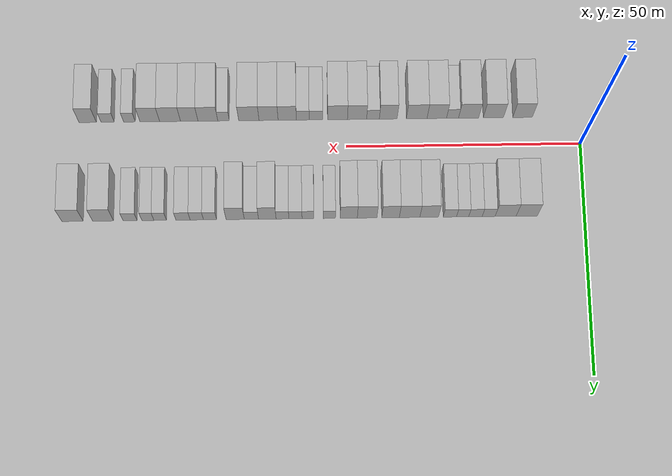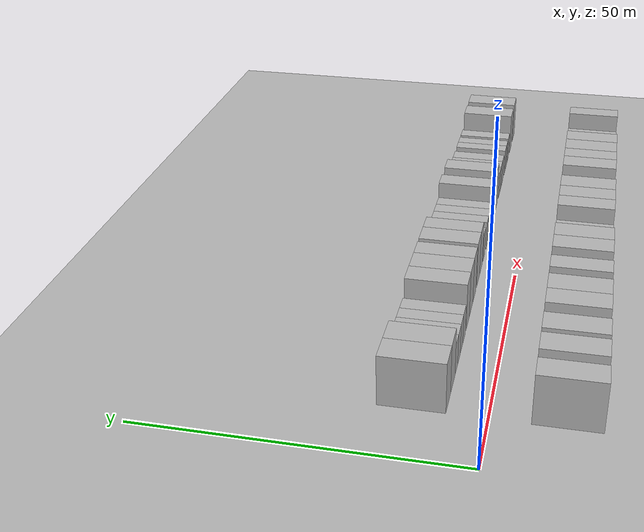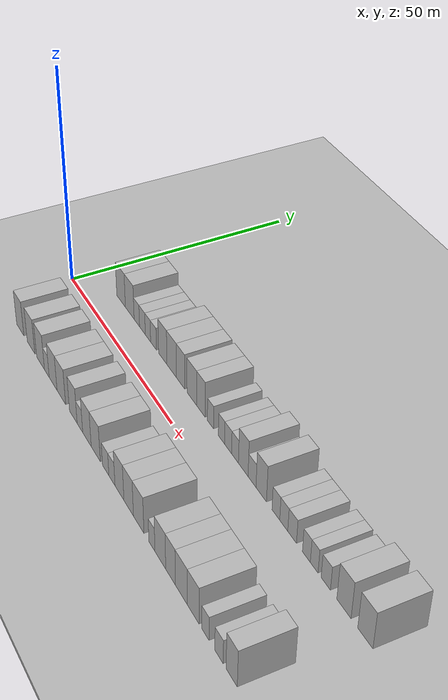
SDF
<sdf version="1.6">
 <world name="default">
  <include><name>ground_plane_1</name><uri>model://HANNAS_ground_plane</uri></include>
  <include>
   <name>ground_plane_2</name>
   <uri>model://HANNAS_ground_plane</uri>
   <pose>100 0 0  0 0 0</pose>
  </include>
  <model name="building_1">
   <static>1</static>
   <pose>12.2414 11.0000 0 0.000000 0.000000 1.570796</pose>
   <link name="link">
    <pose>0 0 4.50 0 0 0</pose>
    <collision name="collision"><geometry><box><size>10.0000 4.4828 9.0000</size></box></geometry></collision>
    <visual name="visual">
     <cast_shadows>0</cast_shadows>
     <geometry><box><size>10.0000 4.4828 9.0000</size></box></geometry>
     <material>
      <script>
       <uri>model://HANNAS_wall/materials/scripts</uri>
       <uri>model://HANNAS_wall/materials/textures</uri>
       <name>vrc/HANNAS_wall</name>
      </script>
     </material>
    </visual>
   </link>
  </model>
  <model name="building_2">
   <static>1</static>
   <pose>16.7032 11.0000 0 0.000000 0.000000 1.570796</pose>
   <link name="link">
    <pose>0 0 4.50 0 0 0</pose>
    <collision name="collision"><geometry><box><size>10.0000 4.4408 9.0000</size></box></geometry></collision>
    <visual name="visual">
     <cast_shadows>0</cast_shadows>
     <geometry><box><size>10.0000 4.4408 9.0000</size></box></geometry>
     <material>
      <script>
       <uri>model://HANNAS_wall/materials/scripts</uri>
       <uri>model://HANNAS_wall/materials/textures</uri>
       <name>vrc/HANNAS_wall</name>
      </script>
     </material>
    </visual>
   </link>
  </model>
  <model name="building_3">
   <static>1</static>
   <pose>20.2841 11.0000 0 0.000000 0.000000 1.570796</pose>
   <link name="link">
    <pose>0 0 3.00 0 0 0</pose>
    <collision name="collision"><geometry><box><size>10.0000 2.7210 6.0000</size></box></geometry></collision>
    <visual name="visual">
     <cast_shadows>0</cast_shadows>
     <geometry><box><size>10.0000 2.7210 6.0000</size></box></geometry>
     <material>
      <script>
       <uri>model://HANNAS_wall/materials/scripts</uri>
       <uri>model://HANNAS_wall/materials/textures</uri>
       <name>vrc/HANNAS_wall</name>
      </script>
     </material>
    </visual>
   </link>
  </model>
  <model name="building_4">
   <static>1</static>
   <pose>23.0607 11.0000 0 0.000000 0.000000 1.570796</pose>
   <link name="link">
    <pose>0 0 3.00 0 0 0</pose>
    <collision name="collision"><geometry><box><size>10.0000 2.8322 6.0000</size></box></geometry></collision>
    <visual name="visual">
     <cast_shadows>0</cast_shadows>
     <geometry><box><size>10.0000 2.8322 6.0000</size></box></geometry>
     <material>
      <script>
       <uri>model://HANNAS_wall/materials/scripts</uri>
       <uri>model://HANNAS_wall/materials/textures</uri>
       <name>vrc/HANNAS_wall</name>
      </script>
     </material>
    </visual>
   </link>
  </model>
  <model name="building_5">
   <static>1</static>
   <pose>25.7686 11.0000 0 0.000000 0.000000 1.570796</pose>
   <link name="link">
    <pose>0 0 3.00 0 0 0</pose>
    <collision name="collision"><geometry><box><size>10.0000 2.5836 6.0000</size></box></geometry></collision>
    <visual name="visual">
     <cast_shadows>0</cast_shadows>
     <geometry><box><size>10.0000 2.5836 6.0000</size></box></geometry>
     <material>
      <script>
       <uri>model://HANNAS_wall/materials/scripts</uri>
       <uri>model://HANNAS_wall/materials/textures</uri>
       <name>vrc/HANNAS_wall</name>
      </script>
     </material>
    </visual>
   </link>
  </model>
  <model name="building_6">
   <static>1</static>
   <pose>28.4573 11.0000 0 0.000000 0.000000 1.570796</pose>
   <link name="link">
    <pose>0 0 3.00 0 0 0</pose>
    <collision name="collision"><geometry><box><size>10.0000 2.7939 6.0000</size></box></geometry></collision>
    <visual name="visual">
     <cast_shadows>0</cast_shadows>
     <geometry><box><size>10.0000 2.7939 6.0000</size></box></geometry>
     <material>
      <script>
       <uri>model://HANNAS_wall/materials/scripts</uri>
       <uri>model://HANNAS_wall/materials/textures</uri>
       <name>vrc/HANNAS_wall</name>
      </script>
     </material>
    </visual>
   </link>
  </model>
  <model name="building_7">
   <static>1</static>
   <pose>32.8185 11.0000 0 0.000000 0.000000 1.570796</pose>
   <link name="link">
    <pose>0 0 4.50 0 0 0</pose>
    <collision name="collision"><geometry><box><size>10.0000 3.9286 9.0000</size></box></geometry></collision>
    <visual name="visual">
     <cast_shadows>0</cast_shadows>
     <geometry><box><size>10.0000 3.9286 9.0000</size></box></geometry>
     <material>
      <script>
       <uri>model://HANNAS_wall/materials/scripts</uri>
       <uri>model://HANNAS_wall/materials/textures</uri>
       <name>vrc/HANNAS_wall</name>
      </script>
     </material>
    </visual>
   </link>
  </model>
  <model name="building_8">
   <static>1</static>
   <pose>36.9429 11.0000 0 0.000000 0.000000 1.570796</pose>
   <link name="link">
    <pose>0 0 4.50 0 0 0</pose>
    <collision name="collision"><geometry><box><size>10.0000 4.3202 9.0000</size></box></geometry></collision>
    <visual name="visual">
     <cast_shadows>0</cast_shadows>
     <geometry><box><size>10.0000 4.3202 9.0000</size></box></geometry>
     <material>
      <script>
       <uri>model://HANNAS_wall/materials/scripts</uri>
       <uri>model://HANNAS_wall/materials/textures</uri>
       <name>vrc/HANNAS_wall</name>
      </script>
     </material>
    </visual>
   </link>
  </model>
  <model name="building_9">
   <static>1</static>
   <pose>40.9576 11.0000 0 0.000000 0.000000 1.570796</pose>
   <link name="link">
    <pose>0 0 4.50 0 0 0</pose>
    <collision name="collision"><geometry><box><size>10.0000 3.7091 9.0000</size></box></geometry></collision>
    <visual name="visual">
     <cast_shadows>0</cast_shadows>
     <geometry><box><size>10.0000 3.7091 9.0000</size></box></geometry>
     <material>
      <script>
       <uri>model://HANNAS_wall/materials/scripts</uri>
       <uri>model://HANNAS_wall/materials/textures</uri>
       <name>vrc/HANNAS_wall</name>
      </script>
     </material>
    </visual>
   </link>
  </model>
  <model name="building_10">
   <static>1</static>
   <pose>45.8803 11.0000 0 0.000000 0.000000 1.570796</pose>
   <link name="link">
    <pose>0 0 4.50 0 0 0</pose>
    <collision name="collision"><geometry><box><size>10.0000 4.1362 9.0000</size></box></geometry></collision>
    <visual name="visual">
     <cast_shadows>0</cast_shadows>
     <geometry><box><size>10.0000 4.1362 9.0000</size></box></geometry>
     <material>
      <script>
       <uri>model://HANNAS_wall/materials/scripts</uri>
       <uri>model://HANNAS_wall/materials/textures</uri>
       <name>vrc/HANNAS_wall</name>
      </script>
     </material>
    </visual>
   </link>
  </model>
  <model name="building_11">
   <static>1</static>
   <pose>49.7523 11.0000 0 0.000000 0.000000 1.570796</pose>
   <link name="link">
    <pose>0 0 4.50 0 0 0</pose>
    <collision name="collision"><geometry><box><size>10.0000 3.6078 9.0000</size></box></geometry></collision>
    <visual name="visual">
     <cast_shadows>0</cast_shadows>
     <geometry><box><size>10.0000 3.6078 9.0000</size></box></geometry>
     <material>
      <script>
       <uri>model://HANNAS_wall/materials/scripts</uri>
       <uri>model://HANNAS_wall/materials/textures</uri>
       <name>vrc/HANNAS_wall</name>
      </script>
     </material>
    </visual>
   </link>
  </model>
  <model name="building_12">
   <static>1</static>
   <pose>53.8203 11.0000 0 0.000000 0.000000 1.570796</pose>
   <link name="link">
    <pose>0 0 3.00 0 0 0</pose>
    <collision name="collision"><geometry><box><size>10.0000 2.5282 6.0000</size></box></geometry></collision>
    <visual name="visual">
     <cast_shadows>0</cast_shadows>
     <geometry><box><size>10.0000 2.5282 6.0000</size></box></geometry>
     <material>
      <script>
       <uri>model://HANNAS_wall/materials/scripts</uri>
       <uri>model://HANNAS_wall/materials/textures</uri>
       <name>vrc/HANNAS_wall</name>
      </script>
     </material>
    </visual>
   </link>
  </model>
  <model name="building_13">
   <static>1</static>
   <pose>58.3313 11.0000 0 0.000000 0.000000 1.570796</pose>
   <link name="link">
    <pose>0 0 3.00 0 0 0</pose>
    <collision name="collision"><geometry><box><size>10.0000 2.4938 6.0000</size></box></geometry></collision>
    <visual name="visual">
     <cast_shadows>0</cast_shadows>
     <geometry><box><size>10.0000 2.4938 6.0000</size></box></geometry>
     <material>
      <script>
       <uri>model://HANNAS_wall/materials/scripts</uri>
       <uri>model://HANNAS_wall/materials/textures</uri>
       <name>vrc/HANNAS_wall</name>
      </script>
     </material>
    </visual>
   </link>
  </model>
  <model name="building_14">
   <static>1</static>
   <pose>60.9623 11.0000 0 0.000000 0.000000 1.570796</pose>
   <link name="link">
    <pose>0 0 3.00 0 0 0</pose>
    <collision name="collision"><geometry><box><size>10.0000 2.7682 6.0000</size></box></geometry></collision>
    <visual name="visual">
     <cast_shadows>0</cast_shadows>
     <geometry><box><size>10.0000 2.7682 6.0000</size></box></geometry>
     <material>
      <script>
       <uri>model://HANNAS_wall/materials/scripts</uri>
       <uri>model://HANNAS_wall/materials/textures</uri>
       <name>vrc/HANNAS_wall</name>
      </script>
     </material>
    </visual>
   </link>
  </model>
  <model name="building_15">
   <static>1</static>
   <pose>63.6974 11.0000 0 0.000000 0.000000 1.570796</pose>
   <link name="link">
    <pose>0 0 3.00 0 0 0</pose>
    <collision name="collision"><geometry><box><size>10.0000 2.7020 6.0000</size></box></geometry></collision>
    <visual name="visual">
     <cast_shadows>0</cast_shadows>
     <geometry><box><size>10.0000 2.7020 6.0000</size></box></geometry>
     <material>
      <script>
       <uri>model://HANNAS_wall/materials/scripts</uri>
       <uri>model://HANNAS_wall/materials/textures</uri>
       <name>vrc/HANNAS_wall</name>
      </script>
     </material>
    </visual>
   </link>
  </model>
  <model name="building_16">
   <static>1</static>
   <pose>66.8935 11.0000 0 0.000000 0.000000 1.570796</pose>
   <link name="link">
    <pose>0 0 4.50 0 0 0</pose>
    <collision name="collision"><geometry><box><size>10.0000 3.6904 9.0000</size></box></geometry></collision>
    <visual name="visual">
     <cast_shadows>0</cast_shadows>
     <geometry><box><size>10.0000 3.6904 9.0000</size></box></geometry>
     <material>
      <script>
       <uri>model://HANNAS_wall/materials/scripts</uri>
       <uri>model://HANNAS_wall/materials/textures</uri>
       <name>vrc/HANNAS_wall</name>
      </script>
     </material>
    </visual>
   </link>
  </model>
  <model name="building_17">
   <static>1</static>
   <pose>70.2351 11.0000 0 0.000000 0.000000 1.570796</pose>
   <link name="link">
    <pose>0 0 3.00 0 0 0</pose>
    <collision name="collision"><geometry><box><size>10.0000 2.9928 6.0000</size></box></geometry></collision>
    <visual name="visual">
     <cast_shadows>0</cast_shadows>
     <geometry><box><size>10.0000 2.9928 6.0000</size></box></geometry>
     <material>
      <script>
       <uri>model://HANNAS_wall/materials/scripts</uri>
       <uri>model://HANNAS_wall/materials/textures</uri>
       <name>vrc/HANNAS_wall</name>
      </script>
     </material>
    </visual>
   </link>
  </model>
  <model name="building_18">
   <static>1</static>
   <pose>73.6525 11.0000 0 0.000000 0.000000 1.570796</pose>
   <link name="link">
    <pose>0 0 4.50 0 0 0</pose>
    <collision name="collision"><geometry><box><size>10.0000 3.8420 9.0000</size></box></geometry></collision>
    <visual name="visual">
     <cast_shadows>0</cast_shadows>
     <geometry><box><size>10.0000 3.8420 9.0000</size></box></geometry>
     <material>
      <script>
       <uri>model://HANNAS_wall/materials/scripts</uri>
       <uri>model://HANNAS_wall/materials/textures</uri>
       <name>vrc/HANNAS_wall</name>
      </script>
     </material>
    </visual>
   </link>
  </model>
  <model name="building_19">
   <static>1</static>
   <pose>78.9546 11.0000 0 0.000000 0.000000 1.570796</pose>
   <link name="link">
    <pose>0 0 3.00 0 0 0</pose>
    <collision name="collision"><geometry><box><size>10.0000 2.7621 6.0000</size></box></geometry></collision>
    <visual name="visual">
     <cast_shadows>0</cast_shadows>
     <geometry><box><size>10.0000 2.7621 6.0000</size></box></geometry>
     <material>
      <script>
       <uri>model://HANNAS_wall/materials/scripts</uri>
       <uri>model://HANNAS_wall/materials/textures</uri>
       <name>vrc/HANNAS_wall</name>
      </script>
     </material>
    </visual>
   </link>
  </model>
  <model name="building_20">
   <static>1</static>
   <pose>81.7388 11.0000 0 0.000000 0.000000 1.570796</pose>
   <link name="link">
    <pose>0 0 3.00 0 0 0</pose>
    <collision name="collision"><geometry><box><size>10.0000 2.8063 6.0000</size></box></geometry></collision>
    <visual name="visual">
     <cast_shadows>0</cast_shadows>
     <geometry><box><size>10.0000 2.8063 6.0000</size></box></geometry>
     <material>
      <script>
       <uri>model://HANNAS_wall/materials/scripts</uri>
       <uri>model://HANNAS_wall/materials/textures</uri>
       <name>vrc/HANNAS_wall</name>
      </script>
     </material>
    </visual>
   </link>
  </model>
  <model name="building_21">
   <static>1</static>
   <pose>84.6400 11.0000 0 0.000000 0.000000 1.570796</pose>
   <link name="link">
    <pose>0 0 3.00 0 0 0</pose>
    <collision name="collision"><geometry><box><size>10.0000 2.9960 6.0000</size></box></geometry></collision>
    <visual name="visual">
     <cast_shadows>0</cast_shadows>
     <geometry><box><size>10.0000 2.9960 6.0000</size></box></geometry>
     <material>
      <script>
       <uri>model://HANNAS_wall/materials/scripts</uri>
       <uri>model://HANNAS_wall/materials/textures</uri>
       <name>vrc/HANNAS_wall</name>
      </script>
     </material>
    </visual>
   </link>
  </model>
  <model name="building_22">
   <static>1</static>
   <pose>89.4517 11.0000 0 0.000000 0.000000 1.570796</pose>
   <link name="link">
    <pose>0 0 3.00 0 0 0</pose>
    <collision name="collision"><geometry><box><size>10.0000 2.6273 6.0000</size></box></geometry></collision>
    <visual name="visual">
     <cast_shadows>0</cast_shadows>
     <geometry><box><size>10.0000 2.6273 6.0000</size></box></geometry>
     <material>
      <script>
       <uri>model://HANNAS_wall/materials/scripts</uri>
       <uri>model://HANNAS_wall/materials/textures</uri>
       <name>vrc/HANNAS_wall</name>
      </script>
     </material>
    </visual>
   </link>
  </model>
  <model name="building_23">
   <static>1</static>
   <pose>92.0279 11.0000 0 0.000000 0.000000 1.570796</pose>
   <link name="link">
    <pose>0 0 3.00 0 0 0</pose>
    <collision name="collision"><geometry><box><size>10.0000 2.5250 6.0000</size></box></geometry></collision>
    <visual name="visual">
     <cast_shadows>0</cast_shadows>
     <geometry><box><size>10.0000 2.5250 6.0000</size></box></geometry>
     <material>
      <script>
       <uri>model://HANNAS_wall/materials/scripts</uri>
       <uri>model://HANNAS_wall/materials/textures</uri>
       <name>vrc/HANNAS_wall</name>
      </script>
     </material>
    </visual>
   </link>
  </model>
  <model name="building_24">
   <static>1</static>
   <pose>95.7770 11.0000 0 0.000000 0.000000 1.570796</pose>
   <link name="link">
    <pose>0 0 3.00 0 0 0</pose>
    <collision name="collision"><geometry><box><size>10.0000 2.9732 6.0000</size></box></geometry></collision>
    <visual name="visual">
     <cast_shadows>0</cast_shadows>
     <geometry><box><size>10.0000 2.9732 6.0000</size></box></geometry>
     <material>
      <script>
       <uri>model://HANNAS_wall/materials/scripts</uri>
       <uri>model://HANNAS_wall/materials/textures</uri>
       <name>vrc/HANNAS_wall</name>
      </script>
     </material>
    </visual>
   </link>
  </model>
  <model name="building_25">
   <static>1</static>
   <pose>101.4536 11.0000 0 0.000000 0.000000 1.570796</pose>
   <link name="link">
    <pose>0 0 4.50 0 0 0</pose>
    <collision name="collision"><geometry><box><size>10.0000 4.3800 9.0000</size></box></geometry></collision>
    <visual name="visual">
     <cast_shadows>0</cast_shadows>
     <geometry><box><size>10.0000 4.3800 9.0000</size></box></geometry>
     <material>
      <script>
       <uri>model://HANNAS_wall/materials/scripts</uri>
       <uri>model://HANNAS_wall/materials/textures</uri>
       <name>vrc/HANNAS_wall</name>
      </script>
     </material>
    </visual>
   </link>
  </model>
  <model name="building_26">
   <static>1</static>
   <pose>107.8832 11.0000 0 0.000000 0.000000 1.570796</pose>
   <link name="link">
    <pose>0 0 4.50 0 0 0</pose>
    <collision name="collision"><geometry><box><size>10.0000 4.4793 9.0000</size></box></geometry></collision>
    <visual name="visual">
     <cast_shadows>0</cast_shadows>
     <geometry><box><size>10.0000 4.4793 9.0000</size></box></geometry>
     <material>
      <script>
       <uri>model://HANNAS_wall/materials/scripts</uri>
       <uri>model://HANNAS_wall/materials/textures</uri>
       <name>vrc/HANNAS_wall</name>
      </script>
     </material>
    </visual>
   </link>
  </model>
  <model name="building_51">
   <static>1</static>
   <pose>12.0988 -11.0000 0 0.000000 0.000000 1.570796</pose>
   <link name="link">
    <pose>0 0 4.50 0 0 0</pose>
    <collision name="collision"><geometry><box><size>10.0000 4.1976 9.0000</size></box></geometry></collision>
    <visual name="visual">
     <cast_shadows>0</cast_shadows>
     <geometry><box><size>10.0000 4.1976 9.0000</size></box></geometry>
     <material>
      <script>
       <uri>model://HANNAS_wall/materials/scripts</uri>
       <uri>model://HANNAS_wall/materials/textures</uri>
       <name>vrc/HANNAS_wall</name>
      </script>
     </material>
    </visual>
   </link>
  </model>
  <model name="building_52">
   <static>1</static>
   <pose>18.3634 -11.0000 0 0.000000 0.000000 1.570796</pose>
   <link name="link">
    <pose>0 0 4.50 0 0 0</pose>
    <collision name="collision"><geometry><box><size>10.0000 4.3317 9.0000</size></box></geometry></collision>
    <visual name="visual">
     <cast_shadows>0</cast_shadows>
     <geometry><box><size>10.0000 4.3317 9.0000</size></box></geometry>
     <material>
      <script>
       <uri>model://HANNAS_wall/materials/scripts</uri>
       <uri>model://HANNAS_wall/materials/textures</uri>
       <name>vrc/HANNAS_wall</name>
      </script>
     </material>
    </visual>
   </link>
  </model>
  <model name="building_53">
   <static>1</static>
   <pose>23.6834 -11.0000 0 0.000000 0.000000 1.570796</pose>
   <link name="link">
    <pose>0 0 4.50 0 0 0</pose>
    <collision name="collision"><geometry><box><size>10.0000 4.3081 9.0000</size></box></geometry></collision>
    <visual name="visual">
     <cast_shadows>0</cast_shadows>
     <geometry><box><size>10.0000 4.3081 9.0000</size></box></geometry>
     <material>
      <script>
       <uri>model://HANNAS_wall/materials/scripts</uri>
       <uri>model://HANNAS_wall/materials/textures</uri>
       <name>vrc/HANNAS_wall</name>
      </script>
     </material>
    </visual>
   </link>
  </model>
  <model name="building_54">
   <static>1</static>
   <pose>27.1206 -11.0000 0 0.000000 0.000000 1.570796</pose>
   <link name="link">
    <pose>0 0 3.00 0 0 0</pose>
    <collision name="collision"><geometry><box><size>10.0000 2.5663 6.0000</size></box></geometry></collision>
    <visual name="visual">
     <cast_shadows>0</cast_shadows>
     <geometry><box><size>10.0000 2.5663 6.0000</size></box></geometry>
     <material>
      <script>
       <uri>model://HANNAS_wall/materials/scripts</uri>
       <uri>model://HANNAS_wall/materials/textures</uri>
       <name>vrc/HANNAS_wall</name>
      </script>
     </material>
    </visual>
   </link>
  </model>
  <model name="building_55">
   <static>1</static>
   <pose>30.4940 -11.0000 0 0.000000 0.000000 1.570796</pose>
   <link name="link">
    <pose>0 0 4.50 0 0 0</pose>
    <collision name="collision"><geometry><box><size>10.0000 4.1804 9.0000</size></box></geometry></collision>
    <visual name="visual">
     <cast_shadows>0</cast_shadows>
     <geometry><box><size>10.0000 4.1804 9.0000</size></box></geometry>
     <material>
      <script>
       <uri>model://HANNAS_wall/materials/scripts</uri>
       <uri>model://HANNAS_wall/materials/textures</uri>
       <name>vrc/HANNAS_wall</name>
      </script>
     </material>
    </visual>
   </link>
  </model>
  <model name="building_56">
   <static>1</static>
   <pose>34.8016 -11.0000 0 0.000000 0.000000 1.570796</pose>
   <link name="link">
    <pose>0 0 4.50 0 0 0</pose>
    <collision name="collision"><geometry><box><size>10.0000 4.4348 9.0000</size></box></geometry></collision>
    <visual name="visual">
     <cast_shadows>0</cast_shadows>
     <geometry><box><size>10.0000 4.4348 9.0000</size></box></geometry>
     <material>
      <script>
       <uri>model://HANNAS_wall/materials/scripts</uri>
       <uri>model://HANNAS_wall/materials/textures</uri>
       <name>vrc/HANNAS_wall</name>
      </script>
     </material>
    </visual>
   </link>
  </model>
  <model name="building_57">
   <static>1</static>
   <pose>40.9238 -11.0000 0 0.000000 0.000000 1.570796</pose>
   <link name="link">
    <pose>0 0 4.50 0 0 0</pose>
    <collision name="collision"><geometry><box><size>10.0000 3.8095 9.0000</size></box></geometry></collision>
    <visual name="visual">
     <cast_shadows>0</cast_shadows>
     <geometry><box><size>10.0000 3.8095 9.0000</size></box></geometry>
     <material>
      <script>
       <uri>model://HANNAS_wall/materials/scripts</uri>
       <uri>model://HANNAS_wall/materials/textures</uri>
       <name>vrc/HANNAS_wall</name>
      </script>
     </material>
    </visual>
   </link>
  </model>
  <model name="building_58">
   <static>1</static>
   <pose>44.1946 -11.0000 0 0.000000 0.000000 1.570796</pose>
   <link name="link">
    <pose>0 0 3.00 0 0 0</pose>
    <collision name="collision"><geometry><box><size>10.0000 2.7320 6.0000</size></box></geometry></collision>
    <visual name="visual">
     <cast_shadows>0</cast_shadows>
     <geometry><box><size>10.0000 2.7320 6.0000</size></box></geometry>
     <material>
      <script>
       <uri>model://HANNAS_wall/materials/scripts</uri>
       <uri>model://HANNAS_wall/materials/textures</uri>
       <name>vrc/HANNAS_wall</name>
      </script>
     </material>
    </visual>
   </link>
  </model>
  <model name="building_59">
   <static>1</static>
   <pose>47.6147 -11.0000 0 0.000000 0.000000 1.570796</pose>
   <link name="link">
    <pose>0 0 4.50 0 0 0</pose>
    <collision name="collision"><geometry><box><size>10.0000 4.1082 9.0000</size></box></geometry></collision>
    <visual name="visual">
     <cast_shadows>0</cast_shadows>
     <geometry><box><size>10.0000 4.1082 9.0000</size></box></geometry>
     <material>
      <script>
       <uri>model://HANNAS_wall/materials/scripts</uri>
       <uri>model://HANNAS_wall/materials/textures</uri>
       <name>vrc/HANNAS_wall</name>
      </script>
     </material>
    </visual>
   </link>
  </model>
  <model name="building_60">
   <static>1</static>
   <pose>51.8039 -11.0000 0 0.000000 0.000000 1.570796</pose>
   <link name="link">
    <pose>0 0 4.50 0 0 0</pose>
    <collision name="collision"><geometry><box><size>10.0000 4.2702 9.0000</size></box></geometry></collision>
    <visual name="visual">
     <cast_shadows>0</cast_shadows>
     <geometry><box><size>10.0000 4.2702 9.0000</size></box></geometry>
     <material>
      <script>
       <uri>model://HANNAS_wall/materials/scripts</uri>
       <uri>model://HANNAS_wall/materials/textures</uri>
       <name>vrc/HANNAS_wall</name>
      </script>
     </material>
    </visual>
   </link>
  </model>
  <model name="building_61">
   <static>1</static>
   <pose>56.4022 -11.0000 0 0.000000 0.000000 1.570796</pose>
   <link name="link">
    <pose>0 0 3.00 0 0 0</pose>
    <collision name="collision"><geometry><box><size>10.0000 2.9265 6.0000</size></box></geometry></collision>
    <visual name="visual">
     <cast_shadows>0</cast_shadows>
     <geometry><box><size>10.0000 2.9265 6.0000</size></box></geometry>
     <material>
      <script>
       <uri>model://HANNAS_wall/materials/scripts</uri>
       <uri>model://HANNAS_wall/materials/textures</uri>
       <name>vrc/HANNAS_wall</name>
      </script>
     </material>
    </visual>
   </link>
  </model>
  <model name="building_62">
   <static>1</static>
   <pose>59.2356 -11.0000 0 0.000000 0.000000 1.570796</pose>
   <link name="link">
    <pose>0 0 3.00 0 0 0</pose>
    <collision name="collision"><geometry><box><size>10.0000 2.7404 6.0000</size></box></geometry></collision>
    <visual name="visual">
     <cast_shadows>0</cast_shadows>
     <geometry><box><size>10.0000 2.7404 6.0000</size></box></geometry>
     <material>
      <script>
       <uri>model://HANNAS_wall/materials/scripts</uri>
       <uri>model://HANNAS_wall/materials/textures</uri>
       <name>vrc/HANNAS_wall</name>
      </script>
     </material>
    </visual>
   </link>
  </model>
  <model name="building_63">
   <static>1</static>
   <pose>62.5726 -11.0000 0 0.000000 0.000000 1.570796</pose>
   <link name="link">
    <pose>0 0 4.50 0 0 0</pose>
    <collision name="collision"><geometry><box><size>10.0000 3.9336 9.0000</size></box></geometry></collision>
    <visual name="visual">
     <cast_shadows>0</cast_shadows>
     <geometry><box><size>10.0000 3.9336 9.0000</size></box></geometry>
     <material>
      <script>
       <uri>model://HANNAS_wall/materials/scripts</uri>
       <uri>model://HANNAS_wall/materials/textures</uri>
       <name>vrc/HANNAS_wall</name>
      </script>
     </material>
    </visual>
   </link>
  </model>
  <model name="building_64">
   <static>1</static>
   <pose>66.5847 -11.0000 0 0.000000 0.000000 1.570796</pose>
   <link name="link">
    <pose>0 0 4.50 0 0 0</pose>
    <collision name="collision"><geometry><box><size>10.0000 4.0906 9.0000</size></box></geometry></collision>
    <visual name="visual">
     <cast_shadows>0</cast_shadows>
     <geometry><box><size>10.0000 4.0906 9.0000</size></box></geometry>
     <material>
      <script>
       <uri>model://HANNAS_wall/materials/scripts</uri>
       <uri>model://HANNAS_wall/materials/textures</uri>
       <name>vrc/HANNAS_wall</name>
      </script>
     </material>
    </visual>
   </link>
  </model>
  <model name="building_65">
   <static>1</static>
   <pose>70.8140 -11.0000 0 0.000000 0.000000 1.570796</pose>
   <link name="link">
    <pose>0 0 4.50 0 0 0</pose>
    <collision name="collision"><geometry><box><size>10.0000 4.3679 9.0000</size></box></geometry></collision>
    <visual name="visual">
     <cast_shadows>0</cast_shadows>
     <geometry><box><size>10.0000 4.3679 9.0000</size></box></geometry>
     <material>
      <script>
       <uri>model://HANNAS_wall/materials/scripts</uri>
       <uri>model://HANNAS_wall/materials/textures</uri>
       <name>vrc/HANNAS_wall</name>
      </script>
     </material>
    </visual>
   </link>
  </model>
  <model name="building_66">
   <static>1</static>
   <pose>76.2325 -11.0000 0 0.000000 0.000000 1.570796</pose>
   <link name="link">
    <pose>0 0 3.00 0 0 0</pose>
    <collision name="collision"><geometry><box><size>10.0000 2.4692 6.0000</size></box></geometry></collision>
    <visual name="visual">
     <cast_shadows>0</cast_shadows>
     <geometry><box><size>10.0000 2.4692 6.0000</size></box></geometry>
     <material>
      <script>
       <uri>model://HANNAS_wall/materials/scripts</uri>
       <uri>model://HANNAS_wall/materials/textures</uri>
       <name>vrc/HANNAS_wall</name>
      </script>
     </material>
    </visual>
   </link>
  </model>
  <model name="building_67">
   <static>1</static>
   <pose>79.5894 -11.0000 0 0.000000 0.000000 1.570796</pose>
   <link name="link">
    <pose>0 0 4.50 0 0 0</pose>
    <collision name="collision"><geometry><box><size>10.0000 4.2446 9.0000</size></box></geometry></collision>
    <visual name="visual">
     <cast_shadows>0</cast_shadows>
     <geometry><box><size>10.0000 4.2446 9.0000</size></box></geometry>
     <material>
      <script>
       <uri>model://HANNAS_wall/materials/scripts</uri>
       <uri>model://HANNAS_wall/materials/textures</uri>
       <name>vrc/HANNAS_wall</name>
      </script>
     </material>
    </visual>
   </link>
  </model>
  <model name="building_68">
   <static>1</static>
   <pose>83.5843 -11.0000 0 0.000000 0.000000 1.570796</pose>
   <link name="link">
    <pose>0 0 4.50 0 0 0</pose>
    <collision name="collision"><geometry><box><size>10.0000 3.7452 9.0000</size></box></geometry></collision>
    <visual name="visual">
     <cast_shadows>0</cast_shadows>
     <geometry><box><size>10.0000 3.7452 9.0000</size></box></geometry>
     <material>
      <script>
       <uri>model://HANNAS_wall/materials/scripts</uri>
       <uri>model://HANNAS_wall/materials/textures</uri>
       <name>vrc/HANNAS_wall</name>
      </script>
     </material>
    </visual>
   </link>
  </model>
  <model name="building_69">
   <static>1</static>
   <pose>87.6979 -11.0000 0 0.000000 0.000000 1.570796</pose>
   <link name="link">
    <pose>0 0 4.50 0 0 0</pose>
    <collision name="collision"><geometry><box><size>10.0000 4.4820 9.0000</size></box></geometry></collision>
    <visual name="visual">
     <cast_shadows>0</cast_shadows>
     <geometry><box><size>10.0000 4.4820 9.0000</size></box></geometry>
     <material>
      <script>
       <uri>model://HANNAS_wall/materials/scripts</uri>
       <uri>model://HANNAS_wall/materials/textures</uri>
       <name>vrc/HANNAS_wall</name>
      </script>
     </material>
    </visual>
   </link>
  </model>
  <model name="building_70">
   <static>1</static>
   <pose>92.0435 -11.0000 0 0.000000 0.000000 1.570796</pose>
   <link name="link">
    <pose>0 0 4.50 0 0 0</pose>
    <collision name="collision"><geometry><box><size>10.0000 4.2091 9.0000</size></box></geometry></collision>
    <visual name="visual">
     <cast_shadows>0</cast_shadows>
     <geometry><box><size>10.0000 4.2091 9.0000</size></box></geometry>
     <material>
      <script>
       <uri>model://HANNAS_wall/materials/scripts</uri>
       <uri>model://HANNAS_wall/materials/textures</uri>
       <name>vrc/HANNAS_wall</name>
      </script>
     </material>
    </visual>
   </link>
  </model>
  <model name="building_71">
   <static>1</static>
   <pose>96.4030 -11.0000 0 0.000000 0.000000 1.570796</pose>
   <link name="link">
    <pose>0 0 3.00 0 0 0</pose>
    <collision name="collision"><geometry><box><size>10.0000 2.5099 6.0000</size></box></geometry></collision>
    <visual name="visual">
     <cast_shadows>0</cast_shadows>
     <geometry><box><size>10.0000 2.5099 6.0000</size></box></geometry>
     <material>
      <script>
       <uri>model://HANNAS_wall/materials/scripts</uri>
       <uri>model://HANNAS_wall/materials/textures</uri>
       <name>vrc/HANNAS_wall</name>
      </script>
     </material>
    </visual>
   </link>
  </model>
  <model name="building_72">
   <static>1</static>
   <pose>101.0778 -11.0000 0 0.000000 0.000000 1.570796</pose>
   <link name="link">
    <pose>0 0 3.00 0 0 0</pose>
    <collision name="collision"><geometry><box><size>10.0000 2.8397 6.0000</size></box></geometry></collision>
    <visual name="visual">
     <cast_shadows>0</cast_shadows>
     <geometry><box><size>10.0000 2.8397 6.0000</size></box></geometry>
     <material>
      <script>
       <uri>model://HANNAS_wall/materials/scripts</uri>
       <uri>model://HANNAS_wall/materials/textures</uri>
       <name>vrc/HANNAS_wall</name>
      </script>
     </material>
    </visual>
   </link>
  </model>
  <model name="building_73">
   <static>1</static>
   <pose>105.3498 -11.0000 0 0.000000 0.000000 1.570796</pose>
   <link name="link">
    <pose>0 0 4.50 0 0 0</pose>
    <collision name="collision"><geometry><box><size>10.0000 3.7044 9.0000</size></box></geometry></collision>
    <visual name="visual">
     <cast_shadows>0</cast_shadows>
     <geometry><box><size>10.0000 3.7044 9.0000</size></box></geometry>
     <material>
      <script>
       <uri>model://HANNAS_wall/materials/scripts</uri>
       <uri>model://HANNAS_wall/materials/textures</uri>
       <name>vrc/HANNAS_wall</name>
      </script>
     </material>
    </visual>
   </link>
  </model>
 </world>
</sdf>
